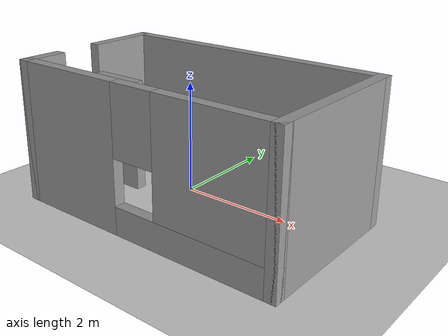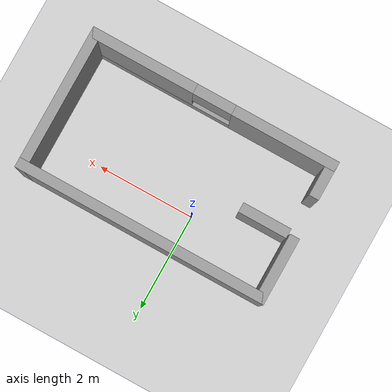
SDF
<sdf version="1.4">
 <world name="default">
  <light name="sun" type="directional">
   <pose>0 0 10 0 -0 0</pose>
   <diffuse>0.8 0.8 0.8 1</diffuse>
   <specular>0.2 0.2 0.2 1</specular>
   <attenuation>
    <range>1000</range>
    <constant>0.9</constant>
    <linear>0.01</linear>
    <quadratic>0.001</quadratic>
   </attenuation>
   <direction>-0.5 0.1 -0.9</direction>
  </light>
  <model name="ground_plane">
   <static>1</static>
   <link name="link">
    <collision name="collision">
     <geometry><plane><normal>0 0 1</normal><size>100 100</size></plane></geometry>
     <surface><friction><ode><mu>100</mu><mu2>50</mu2></ode></friction></surface>
    </collision>
    <visual name="visual">
     <cast_shadows>0</cast_shadows>
     <geometry><plane><normal>0 0 1</normal><size>100 100</size></plane></geometry>
     <material>
      <script><uri>file://media/materials/scripts/gazebo.material</uri><name>Gazebo/Grey</name></script>
     </material>
    </visual>
    <velocity_decay><linear>0</linear><angular>0</angular></velocity_decay>
   </link>
  </model>
  <physics type="ode">
   <max_step_size>0.01</max_step_size>
   <real_time_factor>1</real_time_factor>
   <real_time_update_rate>100</real_time_update_rate>
   <gravity>0 0 -9.8</gravity>
  </physics>
  <scene><ambient>0.4 0.4 0.4 1</ambient><background>0.7 0.7 0.7 1</background><shadows>1</shadows></scene>
  <model name="house2">
   <link name="Door_0">
    <collision name="Door_0_Collision">
     <geometry><box><size>1 0.2 2</size></box></geometry>
     <pose>0 0 1 0 -0 0</pose>
    </collision>
    <visual name="Door_0_Visual">
     <pose>0 0 1 0 -0 0</pose>
     <geometry><box><size>1 0.2 2</size></box></geometry>
     <material>
      <script><uri>file://media/materials/scripts/gazebo.material</uri><name>Gazebo/Grey</name></script>
     </material>
    </visual>
    <velocity_decay><linear>0</linear><angular>0</angular></velocity_decay>
    <pose>-1.75993 -1.51147 0 0 -0 0</pose>
   </link>
   <link name="Wall_0">
    <collision name="Wall_0_Collision">
     <geometry><box><size>0.79 0.2 2.5</size></box></geometry>
     <pose>0 0 1.25 0 -0 0</pose>
    </collision>
    <visual name="Wall_0_Visual">
     <pose>0 0 1.25 0 -0 0</pose>
     <geometry><box><size>0.79 0.2 2.5</size></box></geometry>
     <material>
      <script><uri>file://media/materials/scripts/gazebo.material</uri><name>Gazebo/Grey</name></script>
     </material>
    </visual>
    <velocity_decay><linear>0</linear><angular>0</angular></velocity_decay>
    <pose>-2.33 -2.665 0 0 0 -1.5708</pose>
   </link>
   <link name="Wall_1">
    <pose>0.125 -2.96 0 0 -0 0</pose>
    <visual name="Wall_1_Visual_0">
     <pose>-1.48696 0 1.25 0 -0 0</pose>
     <geometry><box><size>2.13607 0.2 2.5</size></box></geometry>
     <material>
      <script><uri>file://media/materials/scripts/gazebo.material</uri><name>Gazebo/Grey</name></script>
     </material>
    </visual>
    <collision name="Wall_1_Collision_0">
     <geometry><box><size>2.13607 0.2 2.5</size></box></geometry>
     <pose>-1.48696 0 1.25 0 -0 0</pose>
    </collision>
    <visual name="Wall_1_Visual_1">
     <pose>1.06804 0 0.25 0 -0 0</pose>
     <geometry><box><size>2.97393 0.2 0.5</size></box></geometry>
     <material>
      <script><uri>file://media/materials/scripts/gazebo.material</uri><name>Gazebo/Grey</name></script>
     </material>
    </visual>
    <collision name="Wall_1_Collision_1">
     <geometry><box><size>2.97393 0.2 0.5</size></box></geometry>
     <pose>1.06804 0 0.25 0 -0 0</pose>
    </collision>
    <visual name="Wall_1_Visual_2">
     <pose>1.46804 0 1.5 0 -0 0</pose>
     <geometry><box><size>2.17393 0.2 2</size></box></geometry>
     <material>
      <script><uri>file://media/materials/scripts/gazebo.material</uri><name>Gazebo/Grey</name></script>
     </material>
    </visual>
    <collision name="Wall_1_Collision_2">
     <geometry><box><size>2.17393 0.2 2</size></box></geometry>
     <pose>1.46804 0 1.5 0 -0 0</pose>
    </collision>
    <visual name="Wall_1_Visual_3">
     <pose>-0.018927 0 1.9 0 -0 0</pose>
     <geometry><box><size>0.8 0.2 1.2</size></box></geometry>
     <material>
      <script><uri>file://media/materials/scripts/gazebo.material</uri><name>Gazebo/Grey</name></script>
     </material>
    </visual>
    <collision name="Wall_1_Collision_3">
     <geometry><box><size>0.8 0.2 1.2</size></box></geometry>
     <pose>-0.018927 0 1.9 0 -0 0</pose>
    </collision>
    <velocity_decay><linear>0</linear><angular>0</angular></velocity_decay>
   </link>
   <link name="Wall_2">
    <collision name="Wall_2_Collision">
     <geometry><box><size>2.93332 0.2 2.5</size></box></geometry>
     <pose>0 0 1.25 0 -0 0</pose>
    </collision>
    <visual name="Wall_2_Visual">
     <pose>0 0 1.25 0 -0 0</pose>
     <geometry><box><size>2.93332 0.2 2.5</size></box></geometry>
     <material>
      <script><uri>file://media/materials/scripts/gazebo.material</uri><name>Gazebo/Grey</name></script>
     </material>
    </visual>
    <velocity_decay><linear>0</linear><angular>0</angular></velocity_decay>
    <pose>2.58 -1.59334 0 0 -0 1.5708</pose>
   </link>
   <link name="Wall_3">
    <collision name="Wall_3_Collision">
     <geometry><box><size>5.15174 0.2 2.5</size></box></geometry>
     <pose>0 0 1.25 0 -0 0</pose>
    </collision>
    <visual name="Wall_3_Visual">
     <pose>0 0 1.25 0 -0 0</pose>
     <geometry><box><size>5.15174 0.2 2.5</size></box></geometry>
     <material>
      <script><uri>file://media/materials/scripts/gazebo.material</uri><name>Gazebo/Grey</name></script>
     </material>
    </visual>
    <velocity_decay><linear>0</linear><angular>0</angular></velocity_decay>
    <pose>0.104132 -0.226676 0 0 -0 3.14159</pose>
   </link>
   <link name="Wall_4">
    <collision name="Wall_4_Collision">
     <geometry><box><size>1.36243 0.2 2.5</size></box></geometry>
     <pose>0 0 1.25 0 -0 0</pose>
    </collision>
    <visual name="Wall_4_Visual">
     <pose>0 0 1.25 0 -0 0</pose>
     <geometry><box><size>1.36243 0.2 2.5</size></box></geometry>
     <material>
      <script><uri>file://media/materials/scripts/gazebo.material</uri><name>Gazebo/Grey</name></script>
     </material>
    </visual>
    <velocity_decay><linear>0</linear><angular>0</angular></velocity_decay>
    <pose>-2.37174 -0.80789 0 0 0 -1.5708</pose>
   </link>
   <static>1</static>
   <pose>0.51616 1 0 0 -0 0</pose>
  </model>
 </world>
</sdf>
